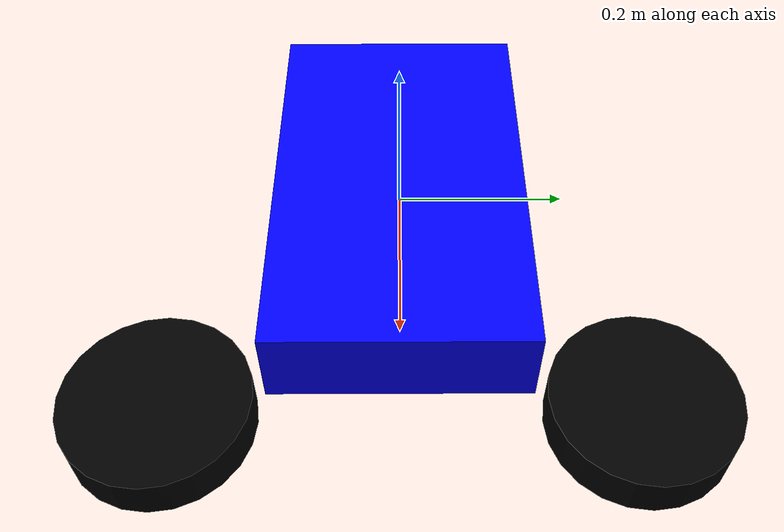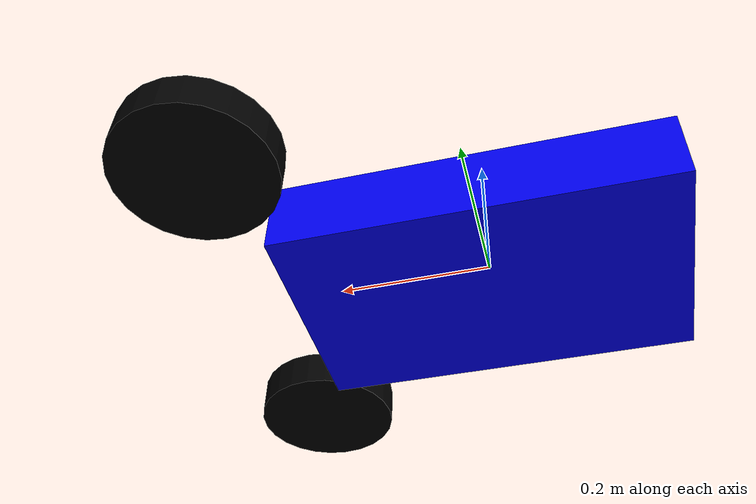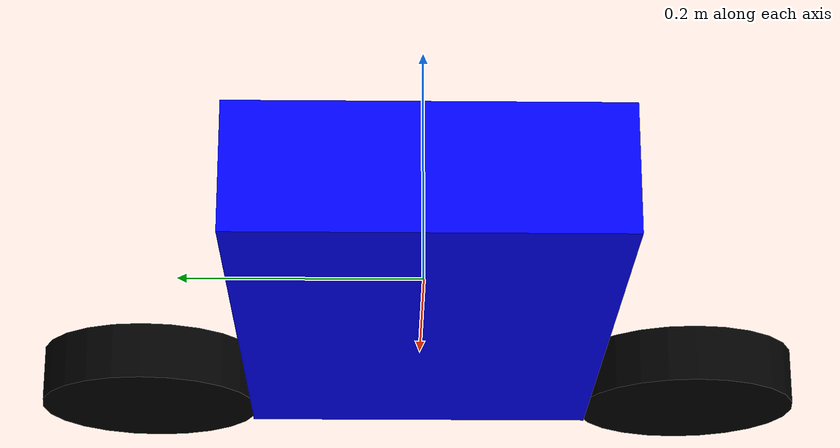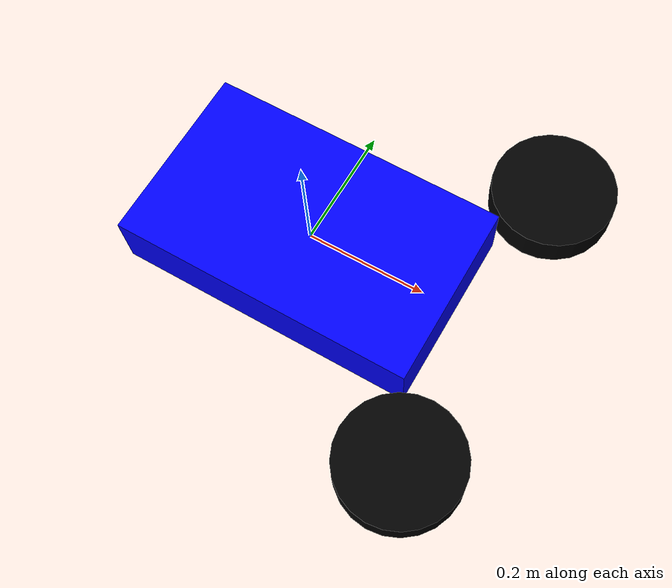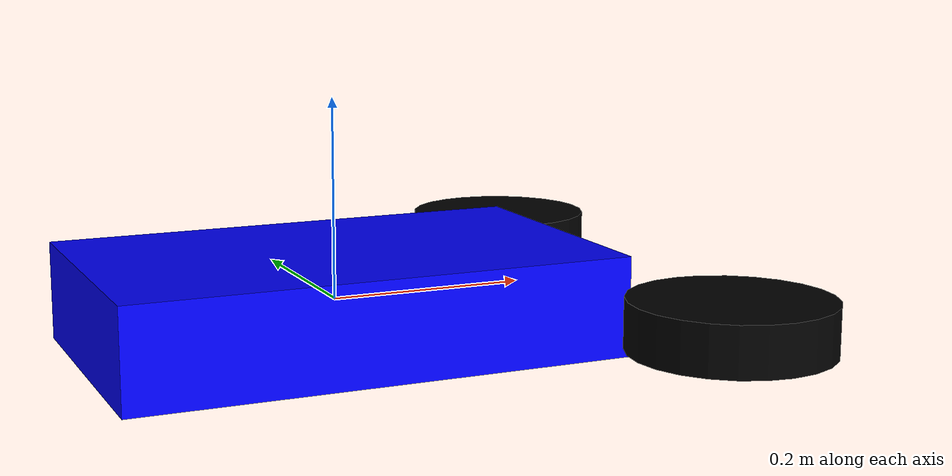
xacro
<?xml version="1.0"?>
<robot xmlns:xacro="http://www.ros.org/wiki/xacro" name="basic_robot">

  <!-- Parameters -->
  <xacro:property name="wheel_radius" value="0.1"/>
  <xacro:property name="wheel_width" value="0.05"/>
  <xacro:property name="wheel_offset" value="0.25"/>

  <!-- Base Link -->
  <link name="base_link">
    <visual>
      <geometry>
        <box size="0.5 0.3 0.1"/>
      </geometry>
      <material name="blue">
        <color rgba="0.0 0.0 1.0 1.0"/>
      </material>
    </visual>
  </link>

  <!-- Macro for Wheels -->
  <xacro:macro name="wheel" params="wheel_name x y z">
    <link name="${wheel_name}">
      <visual>
        <geometry>
          <cylinder radius="${wheel_radius}" length="${wheel_width}"/>
        </geometry>
        <material name="black">
          <color rgba="0.0 0.0 0.0 1.0"/>
        </material>
      </visual>
    </link>
    <joint name="${wheel_name}_joint" type="continuous">
      <parent link="base_link"/>
      <child link="${wheel_name}"/>
      <origin xyz="${x} ${y} ${z}" rpy="0 0 0"/>
      <axis xyz="0 1 0"/>
    </joint>
  </xacro:macro>

  <!-- Add Wheels -->
  <xacro:wheel wheel_name="left_wheel" x="0.3" y="${wheel_offset}" z="0"/>
  <xacro:wheel wheel_name="right_wheel" x="0.3" y="-${wheel_offset}" z="0"/>

</robot>
